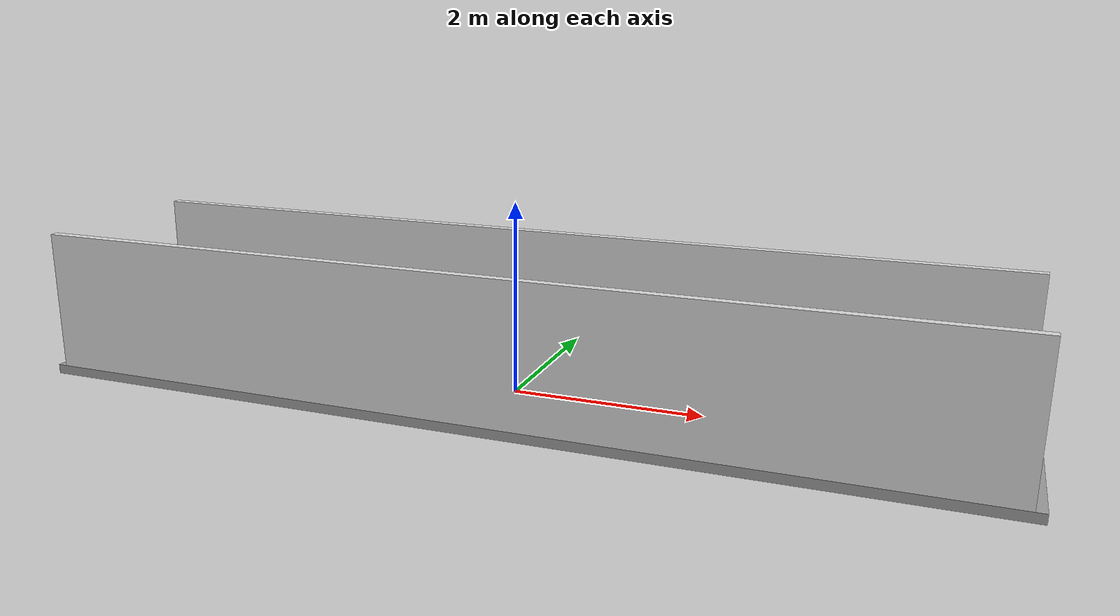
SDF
<?xml version="1.0" ?>
<sdf version="1.6">
  <world name="corridor_world">
    <!-- Basic lighting and physics for Gazebo Classic -->
    <include>
      <uri>model://sun</uri>
    </include>

    <physics name="default_physics" type="ode">
      <max_step_size>0.001</max_step_size>
      <real_time_update_rate>1000</real_time_update_rate>
    </physics>

    <!-- Corridor dimensions: inner width 2.0 m, length 10.0 m.
         Corridor runs along X; both ends are open. -->

    <!-- Floor slab: 10.2 m x 2.2 m, thickness 0.10 m; top surface at z=0. -->
    <model name="corridor_floor">
      <static>true</static>
      <link name="floor_link">
        <collision name="floor_collision">
          <geometry>
            <box><size>10.2 2.2 0.1</size></box>
          </geometry>
        </collision>
        <visual name="floor_visual">
          <geometry>
            <box><size>10.2 2.2 0.1</size></box>
          </geometry>
          <material>
            <ambient>0.55 0.55 0.55 1</ambient>
            <diffuse>0.65 0.65 0.65 1</diffuse>
            <specular>0.05 0.05 0.05 1</specular>
          </material>
        </visual>
        <pose>0 0 -0.05 0 0 0</pose>
      </link>
    </model>

    <!-- Left wall: inner face at y=-1.0; height 1.5 m, thickness 0.1 m. -->
    <model name="left_wall">
      <static>true</static>
      <pose>0 -1.05 0.75 0 0 0</pose>
      <link name="wall_link">
        <collision name="wall_collision">
          <geometry><box><size>10.0 0.1 1.5</size></box></geometry>
        </collision>
        <visual name="wall_visual">
          <geometry><box><size>10.0 0.1 1.5</size></box></geometry>
          <material>
            <ambient>0.82 0.82 0.82 1</ambient>
            <diffuse>0.9 0.9 0.9 1</diffuse>
            <specular>0.1 0.1 0.1 1</specular>
          </material>
        </visual>
      </link>
    </model>

    <!-- Right wall: inner face at y=+1.0. -->
    <model name="right_wall">
      <static>true</static>
      <pose>0 1.05 0.75 0 0 0</pose>
      <link name="wall_link">
        <collision name="wall_collision">
          <geometry><box><size>10.0 0.1 1.5</size></box></geometry>
        </collision>
        <visual name="wall_visual">
          <geometry><box><size>10.0 0.1 1.5</size></box></geometry>
          <material>
            <ambient>0.82 0.82 0.82 1</ambient>
            <diffuse>0.9 0.9 0.9 1</diffuse>
            <specular>0.1 0.1 0.1 1</specular>
          </material>
        </visual>
      </link>
    </model>

    <gui fullscreen="0">
      <camera name="corridor_camera">
        <pose>0 -8 6.5 0 0.55 1.5708</pose>
        <view_controller>orbit</view_controller>
      </camera>
    </gui>
  </world>
</sdf>
